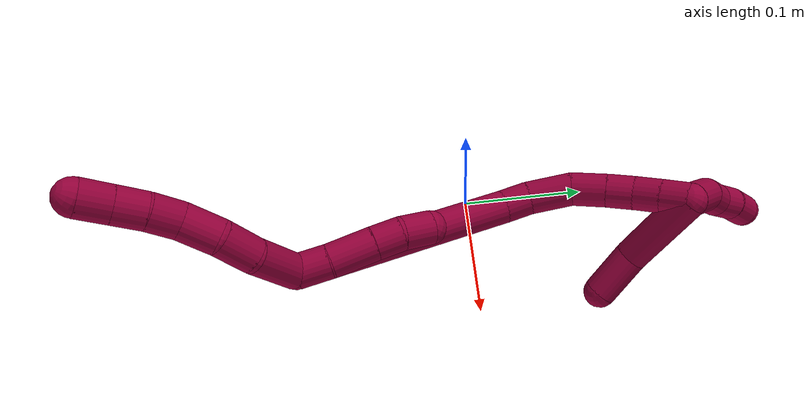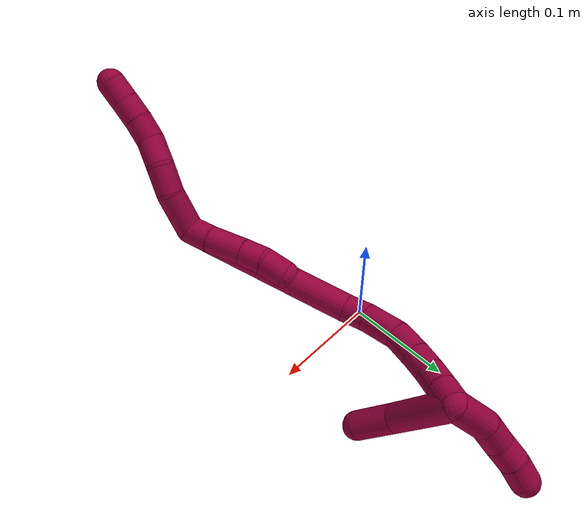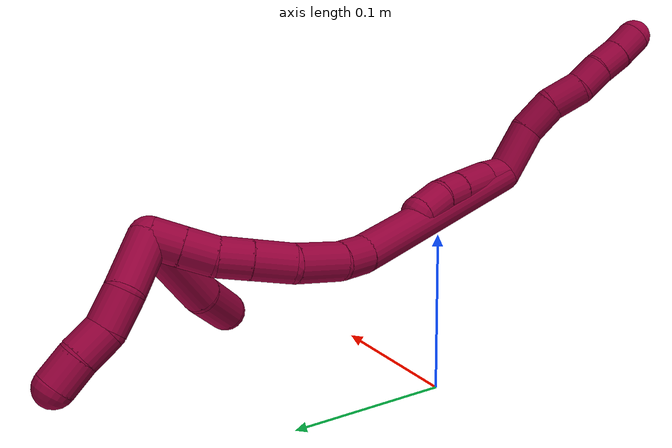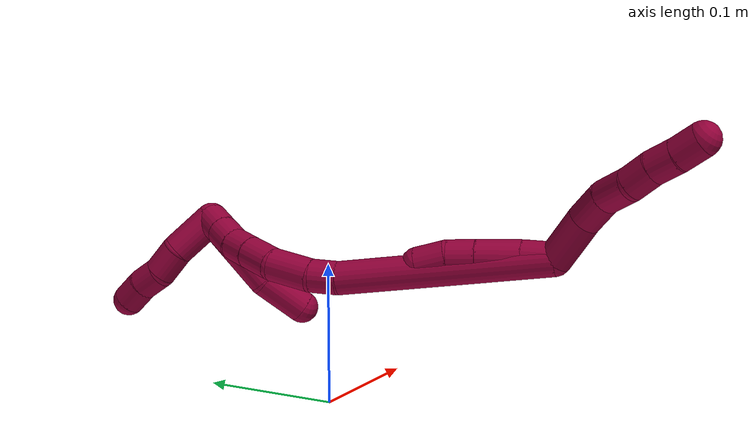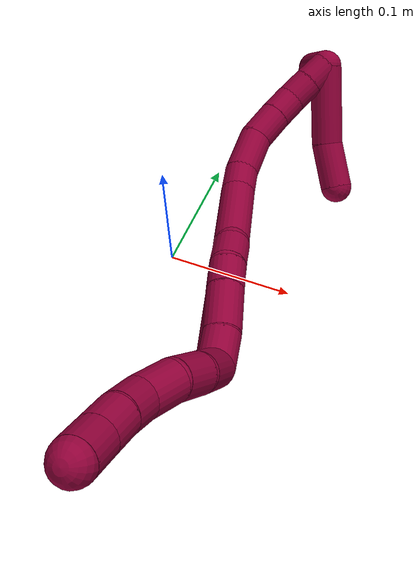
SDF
<sdf version="1.7">
 <world name="default">
  <model name="photoneo_s_sensor">
   <static>1</static>
   <pose>0 0 2 1.57079 1.57079 3.14159</pose>
   <link name="link">
    <inertial><mass>0.1</mass></inertial>
    <sensor name="sensor" type="depth">
     <update_rate>30</update_rate>
     <camera>
      <horizontal_fov>1.22</horizontal_fov>
      <image><width>1920</width><height>1200</height><format>B8G8R8</format></image>
      <clip><near>0.1</near><far>4</far></clip>
      <depth_camera><output>points</output></depth_camera>
     </camera>
     <plugin name="camera_plugin" filename="libgazebo_ros_depth_camera.so">
      <baseline>0.2</baseline>
      <alwaysOn>1</alwaysOn>
      <updateRate>0.0</updateRate>
      <cameraName>camera_ir</cameraName>
      <imageTopicName>/camera/color/image_raw</imageTopicName>
      <cameraInfoTopicName>/camera/color/camera_info</cameraInfoTopicName>
      <depthImageTopicName>/camera/depth/image_raw</depthImageTopicName>
      <depthImageCameraInfoTopicName>/camera/depth/camera_info</depthImageCameraInfoTopicName>
      <pointCloudTopicName>/camera/depth/points</pointCloudTopicName>
      <frameName>fr_optical</frameName>
      <pointCloudCutoff>0.1</pointCloudCutoff>
      <pointCloudCutoffMax>2.0</pointCloudCutoffMax>
      <distortionK1>0</distortionK1>
      <distortionK2>0</distortionK2>
      <distortionK3>0</distortionK3>
      <distortionT1>0</distortionT1>
      <distortionT2>0</distortionT2>
      <CxPrime>0</CxPrime>
      <Cx>0</Cx>
      <Cy>0</Cy>
      <focalLength>0</focalLength>
      <hackBaseline>0</hackBaseline>
     </plugin>
    </sensor>
   </link>
  </model>
  <model name="bin">
   <static>1</static>
   <link name="bottom">
    <collision name="collision-bottom">
     <pose>0 0 -0.01 0 -0 0</pose>
     <geometry><box><size>0.8 0.6 0.02</size></box></geometry>
     <surface>
      <friction><ode><mu>100</mu><mu2>100</mu2></ode></friction>
      <contact><collide_bitmask>65535</collide_bitmask></contact>
     </surface>
    </collision>
   </link>
   <link name="west_wall">
    <collision name="collision-west_wall">
     <pose>-0.41 0 0.1 0 -0 0</pose>
     <geometry><box><size>0.02 0.6 0.2</size></box></geometry>
     <surface>
      <friction><ode><mu>100</mu><mu2>100</mu2></ode></friction>
      <contact><collide_bitmask>65535</collide_bitmask></contact>
     </surface>
    </collision>
   </link>
   <link name="east_wall">
    <collision name="collision-east_wall">
     <pose>0.41 0 0.1 0 -0 0</pose>
     <geometry><box><size>0.02 0.6 0.2</size></box></geometry>
     <surface>
      <friction><ode><mu>100</mu><mu2>100</mu2></ode></friction>
      <contact><collide_bitmask>65535</collide_bitmask></contact>
     </surface>
    </collision>
   </link>
   <link name="south_wall">
    <collision name="collision-south_wall">
     <pose>0 -0.31 0.1 0 -0 0</pose>
     <geometry><box><size>0.8 0.02 0.2</size></box></geometry>
     <surface>
      <friction><ode><mu>100</mu><mu2>100</mu2></ode></friction>
      <contact><collide_bitmask>65535</collide_bitmask></contact>
     </surface>
    </collision>
   </link>
   <link name="north_wall">
    <collision name="collision-north_wall">
     <pose>0 0.31 0.1 0 -0 0</pose>
     <geometry><box><size>0.8 0.02 0.2</size></box></geometry>
     <surface>
      <friction><ode><mu>100</mu><mu2>100</mu2></ode></friction>
      <contact><collide_bitmask>65535</collide_bitmask></contact>
     </surface>
    </collision>
   </link>
  </model>
  <model name="8">
   <static>0</static>
   <link name="8">
    <collision name="collision-cylinder-e_1_2_8">
     <pose>-0.000307 0.001128 0.018685 -0.060277 -0.016421 0.000495</pose>
     <geometry><cylinder><radius>0.0125</radius><length>0.037444</length></cylinder></geometry>
     <surface>
      <friction><ode><mu>1.16</mu><mu2>1.16</mu2><slip1>0</slip1><slip2>0</slip2></ode></friction>
      <contact><ode><kp>1e+06</kp><kd>1</kd><max_vel>0</max_vel><min_depth>0.001</min_depth></ode></contact>
     </surface>
    </collision>
    <visual name="visual-cylinder-e_1_2_8">
     <pose>-0.000307 0.001128 0.018685 -0.060277 -0.016421 0.000495</pose>
     <geometry><cylinder><radius>0.0125</radius><length>0.037444</length></cylinder></geometry>
     <material><ambient>0.584314 0 0.227451 1</ambient></material>
    </visual>
    <collision name="collision-cylinder-e_2_8_9">
     <pose>-0.003065 0.000481 0.049963 0.139961 -0.190377 -0.013385</pose>
     <geometry><cylinder><radius>0.0125</radius><length>0.0259</length></cylinder></geometry>
     <surface>
      <friction><ode><mu>1.16</mu><mu2>1.16</mu2><slip1>0</slip1><slip2>0</slip2></ode></friction>
      <contact><ode><kp>1e+06</kp><kd>1</kd><max_vel>0</max_vel><min_depth>0.001</min_depth></ode></contact>
     </surface>
    </collision>
    <visual name="visual-cylinder-e_2_8_9">
     <pose>-0.003065 0.000481 0.049963 0.139961 -0.190377 -0.013385</pose>
     <geometry><cylinder><radius>0.0125</radius><length>0.0259</length></cylinder></geometry>
     <material><ambient>0.584314 0 0.227451 1</ambient></material>
    </visual>
    <collision name="collision-cylinder-e_3_9_10">
     <pose>-0.007919 -0.006723 0.07381 0.449528 -0.189996 -0.043563</pose>
     <geometry><cylinder><radius>0.0125</radius><length>0.025452</length></cylinder></geometry>
     <surface>
      <friction><ode><mu>1.16</mu><mu2>1.16</mu2><slip1>0</slip1><slip2>0</slip2></ode></friction>
      <contact><ode><kp>1e+06</kp><kd>1</kd><max_vel>0</max_vel><min_depth>0.001</min_depth></ode></contact>
     </surface>
    </collision>
    <visual name="visual-cylinder-e_3_9_10">
     <pose>-0.007919 -0.006723 0.07381 0.449528 -0.189996 -0.043563</pose>
     <geometry><cylinder><radius>0.0125</radius><length>0.025452</length></cylinder></geometry>
     <material><ambient>0.584314 0 0.227451 1</ambient></material>
    </visual>
    <collision name="collision-cylinder-e_4_10_11">
     <pose>-0.010296 -0.014618 0.095023 0.242629 0.002567 0.000313</pose>
     <geometry><cylinder><radius>0.0125</radius><length>0.020516</length></cylinder></geometry>
     <surface>
      <friction><ode><mu>1.16</mu><mu2>1.16</mu2><slip1>0</slip1><slip2>0</slip2></ode></friction>
      <contact><ode><kp>1e+06</kp><kd>1</kd><max_vel>0</max_vel><min_depth>0.001</min_depth></ode></contact>
     </surface>
    </collision>
    <visual name="visual-cylinder-e_4_10_11">
     <pose>-0.010296 -0.014618 0.095023 0.242629 0.002567 0.000313</pose>
     <geometry><cylinder><radius>0.0125</radius><length>0.020516</length></cylinder></geometry>
     <material><ambient>0.584314 0 0.227451 1</ambient></material>
    </visual>
    <collision name="collision-cylinder-e_5_11_12">
     <pose>-0.009624 -0.020672 0.114295 0.36783 0.064654 0.012031</pose>
     <geometry><cylinder><radius>0.0125</radius><length>0.020007</length></cylinder></geometry>
     <surface>
      <friction><ode><mu>1.16</mu><mu2>1.16</mu2><slip1>0</slip1><slip2>0</slip2></ode></friction>
      <contact><ode><kp>1e+06</kp><kd>1</kd><max_vel>0</max_vel><min_depth>0.001</min_depth></ode></contact>
     </surface>
    </collision>
    <visual name="visual-cylinder-e_5_11_12">
     <pose>-0.009624 -0.020672 0.114295 0.36783 0.064654 0.012031</pose>
     <geometry><cylinder><radius>0.0125</radius><length>0.020007</length></cylinder></geometry>
     <material><ambient>0.584314 0 0.227451 1</ambient></material>
    </visual>
    <collision name="collision-cylinder-e_6_12_6">
     <pose>-0.00805 -0.026984 0.133543 0.267448 0.089799 0.012088</pose>
     <geometry><cylinder><radius>0.0125</radius><length>0.020681</length></cylinder></geometry>
     <surface>
      <friction><ode><mu>1.16</mu><mu2>1.16</mu2><slip1>0</slip1><slip2>0</slip2></ode></friction>
      <contact><ode><kp>1e+06</kp><kd>1</kd><max_vel>0</max_vel><min_depth>0.001</min_depth></ode></contact>
     </surface>
    </collision>
    <visual name="visual-cylinder-e_6_12_6">
     <pose>-0.00805 -0.026984 0.133543 0.267448 0.089799 0.012088</pose>
     <geometry><cylinder><radius>0.0125</radius><length>0.020681</length></cylinder></geometry>
     <material><ambient>0.584314 0 0.227451 1</ambient></material>
    </visual>
    <collision name="collision-cylinder-e_1_2_13">
     <pose>-0.005301 0.007933 -0.007093 -2.30034 -0.462132 0.968375</pose>
     <geometry><cylinder><radius>0.0125</radius><length>0.023778</length></cylinder></geometry>
     <surface>
      <friction><ode><mu>1.16</mu><mu2>1.16</mu2><slip1>0</slip1><slip2>0</slip2></ode></friction>
      <contact><ode><kp>1e+06</kp><kd>1</kd><max_vel>0</max_vel><min_depth>0.001</min_depth></ode></contact>
     </surface>
    </collision>
    <visual name="visual-cylinder-e_1_2_13">
     <pose>-0.005301 0.007933 -0.007093 -2.30034 -0.462132 0.968375</pose>
     <geometry><cylinder><radius>0.0125</radius><length>0.023778</length></cylinder></geometry>
     <material><ambient>0.584314 0 0.227451 1</ambient></material>
    </visual>
    <collision name="collision-cylinder-e_2_13_14">
     <pose>-0.019336 0.025531 -0.024304 -2.37907 -0.558074 1.24107</pose>
     <geometry><cylinder><radius>0.0125</radius><length>0.032988</length></cylinder></geometry>
     <surface>
      <friction><ode><mu>1.16</mu><mu2>1.16</mu2><slip1>0</slip1><slip2>0</slip2></ode></friction>
      <contact><ode><kp>1e+06</kp><kd>1</kd><max_vel>0</max_vel><min_depth>0.001</min_depth></ode></contact>
     </surface>
    </collision>
    <visual name="visual-cylinder-e_2_13_14">
     <pose>-0.019336 0.025531 -0.024304 -2.37907 -0.558074 1.24107</pose>
     <geometry><cylinder><radius>0.0125</radius><length>0.032988</length></cylinder></geometry>
     <material><ambient>0.584314 0 0.227451 1</ambient></material>
    </visual>
    <collision name="collision-cylinder-e_3_14_15">
     <pose>-0.033306 0.04112 -0.041017 -2.40978 -0.533409 1.23886</pose>
     <geometry><cylinder><radius>0.0125</radius><length>0.020593</length></cylinder></geometry>
     <surface>
      <friction><ode><mu>1.16</mu><mu2>1.16</mu2><slip1>0</slip1><slip2>0</slip2></ode></friction>
      <contact><ode><kp>1e+06</kp><kd>1</kd><max_vel>0</max_vel><min_depth>0.001</min_depth></ode></contact>
     </surface>
    </collision>
    <visual name="visual-cylinder-e_3_14_15">
     <pose>-0.033306 0.04112 -0.041017 -2.40978 -0.533409 1.23886</pose>
     <geometry><cylinder><radius>0.0125</radius><length>0.020593</length></cylinder></geometry>
     <material><ambient>0.584314 0 0.227451 1</ambient></material>
    </visual>
    <collision name="collision-cylinder-e_4_15_5">
     <pose>-0.043232 0.051988 -0.056653 -2.64122 -0.427198 1.40761</pose>
     <geometry><cylinder><radius>0.0125</radius><length>0.02264</length></cylinder></geometry>
     <surface>
      <friction><ode><mu>1.16</mu><mu2>1.16</mu2><slip1>0</slip1><slip2>0</slip2></ode></friction>
      <contact><ode><kp>1e+06</kp><kd>1</kd><max_vel>0</max_vel><min_depth>0.001</min_depth></ode></contact>
     </surface>
    </collision>
    <visual name="visual-cylinder-e_4_15_5">
     <pose>-0.043232 0.051988 -0.056653 -2.64122 -0.427198 1.40761</pose>
     <geometry><cylinder><radius>0.0125</radius><length>0.02264</length></cylinder></geometry>
     <material><ambient>0.584314 0 0.227451 1</ambient></material>
    </visual>
    <collision name="collision-cylinder-e_1_2_16">
     <pose>-0.038137 0.042574 -0.055601 -2.48812 -0.498679 1.28879</pose>
     <geometry><cylinder><radius>0.0125</radius><length>0.159479</length></cylinder></geometry>
     <surface>
      <friction><ode><mu>1.16</mu><mu2>1.16</mu2><slip1>0</slip1><slip2>0</slip2></ode></friction>
      <contact><ode><kp>1e+06</kp><kd>1</kd><max_vel>0</max_vel><min_depth>0.001</min_depth></ode></contact>
     </surface>
    </collision>
    <visual name="visual-cylinder-e_1_2_16">
     <pose>-0.038137 0.042574 -0.055601 -2.48812 -0.498679 1.28879</pose>
     <geometry><cylinder><radius>0.0125</radius><length>0.159479</length></cylinder></geometry>
     <material><ambient>0.584314 0 0.227451 1</ambient></material>
    </visual>
    <collision name="collision-cylinder-e_2_16_17">
     <pose>-0.081091 0.091968 -0.117184 -2.29083 -0.488159 1.00525</pose>
     <geometry><cylinder><radius>0.0125</radius><length>0.020543</length></cylinder></geometry>
     <surface>
      <friction><ode><mu>1.16</mu><mu2>1.16</mu2><slip1>0</slip1><slip2>0</slip2></ode></friction>
      <contact><ode><kp>1e+06</kp><kd>1</kd><max_vel>0</max_vel><min_depth>0.001</min_depth></ode></contact>
     </surface>
    </collision>
    <visual name="visual-cylinder-e_2_16_17">
     <pose>-0.081091 0.091968 -0.117184 -2.29083 -0.488159 1.00525</pose>
     <geometry><cylinder><radius>0.0125</radius><length>0.020543</length></cylinder></geometry>
     <material><ambient>0.584314 0 0.227451 1</ambient></material>
    </visual>
    <collision name="collision-cylinder-e_3_17_18">
     <pose>-0.090854 0.112234 -0.131416 -2.12115 -0.3038 0.533993</pose>
     <geometry><cylinder><radius>0.0125</radius><length>0.033064</length></cylinder></geometry>
     <surface>
      <friction><ode><mu>1.16</mu><mu2>1.16</mu2><slip1>0</slip1><slip2>0</slip2></ode></friction>
      <contact><ode><kp>1e+06</kp><kd>1</kd><max_vel>0</max_vel><min_depth>0.001</min_depth></ode></contact>
     </surface>
    </collision>
    <visual name="visual-cylinder-e_3_17_18">
     <pose>-0.090854 0.112234 -0.131416 -2.12115 -0.3038 0.533993</pose>
     <geometry><cylinder><radius>0.0125</radius><length>0.033064</length></cylinder></geometry>
     <material><ambient>0.584314 0 0.227451 1</ambient></material>
    </visual>
    <collision name="collision-cylinder-e_4_18_19">
     <pose>-0.095733 0.137309 -0.145432 -2.03108 0.005112 -0.00824</pose>
     <geometry><cylinder><radius>0.0125</radius><length>0.025961</length></cylinder></geometry>
     <surface>
      <friction><ode><mu>1.16</mu><mu2>1.16</mu2><slip1>0</slip1><slip2>0</slip2></ode></friction>
      <contact><ode><kp>1e+06</kp><kd>1</kd><max_vel>0</max_vel><min_depth>0.001</min_depth></ode></contact>
     </surface>
    </collision>
    <visual name="visual-cylinder-e_4_18_19">
     <pose>-0.095733 0.137309 -0.145432 -2.03108 0.005112 -0.00824</pose>
     <geometry><cylinder><radius>0.0125</radius><length>0.025961</length></cylinder></geometry>
     <material><ambient>0.584314 0 0.227451 1</ambient></material>
    </visual>
    <collision name="collision-cylinder-e_5_19_20">
     <pose>-0.095179 0.158056 -0.155782 -2.03664 0.04772 -0.077379</pose>
     <geometry><cylinder><radius>0.0125</radius><length>0.020433</length></cylinder></geometry>
     <surface>
      <friction><ode><mu>1.16</mu><mu2>1.16</mu2><slip1>0</slip1><slip2>0</slip2></ode></friction>
      <contact><ode><kp>1e+06</kp><kd>1</kd><max_vel>0</max_vel><min_depth>0.001</min_depth></ode></contact>
     </surface>
    </collision>
    <visual name="visual-cylinder-e_5_19_20">
     <pose>-0.095179 0.158056 -0.155782 -2.03664 0.04772 -0.077379</pose>
     <geometry><cylinder><radius>0.0125</radius><length>0.020433</length></cylinder></geometry>
     <material><ambient>0.584314 0 0.227451 1</ambient></material>
    </visual>
    <collision name="collision-cylinder-e_6_20_21">
     <pose>-0.093224 0.176872 -0.16314 -1.84943 0.144485 -0.191362</pose>
     <geometry><cylinder><radius>0.0125</radius><length>0.020387</length></cylinder></geometry>
     <surface>
      <friction><ode><mu>1.16</mu><mu2>1.16</mu2><slip1>0</slip1><slip2>0</slip2></ode></friction>
      <contact><ode><kp>1e+06</kp><kd>1</kd><max_vel>0</max_vel><min_depth>0.001</min_depth></ode></contact>
     </surface>
    </collision>
    <visual name="visual-cylinder-e_6_20_21">
     <pose>-0.093224 0.176872 -0.16314 -1.84943 0.144485 -0.191362</pose>
     <geometry><cylinder><radius>0.0125</radius><length>0.020387</length></cylinder></geometry>
     <material><ambient>0.584314 0 0.227451 1</ambient></material>
    </visual>
    <collision name="collision-cylinder-e_7_21_1">
     <pose>-0.09012 0.196145 -0.168553 -1.8397 0.163272 -0.214009</pose>
     <geometry><cylinder><radius>0.0125</radius><length>0.020132</length></cylinder></geometry>
     <surface>
      <friction><ode><mu>1.16</mu><mu2>1.16</mu2><slip1>0</slip1><slip2>0</slip2></ode></friction>
      <contact><ode><kp>1e+06</kp><kd>1</kd><max_vel>0</max_vel><min_depth>0.001</min_depth></ode></contact>
     </surface>
    </collision>
    <visual name="visual-cylinder-e_7_21_1">
     <pose>-0.09012 0.196145 -0.168553 -1.8397 0.163272 -0.214009</pose>
     <geometry><cylinder><radius>0.0125</radius><length>0.020132</length></cylinder></geometry>
     <material><ambient>0.584314 0 0.227451 1</ambient></material>
    </visual>
    <collision name="collision-cylinder-e_1_1_22">
     <pose>-0.071588 0.179862 -0.178358 1.84113 0.561968 0.725385</pose>
     <geometry><cylinder><radius>0.0125</radius><length>0.063418</length></cylinder></geometry>
     <surface>
      <friction><ode><mu>1.16</mu><mu2>1.16</mu2><slip1>0</slip1><slip2>0</slip2></ode></friction>
      <contact><ode><kp>1e+06</kp><kd>1</kd><max_vel>0</max_vel><min_depth>0.001</min_depth></ode></contact>
     </surface>
    </collision>
    <visual name="visual-cylinder-e_1_1_22">
     <pose>-0.071588 0.179862 -0.178358 1.84113 0.561968 0.725385</pose>
     <geometry><cylinder><radius>0.0125</radius><length>0.063418</length></cylinder></geometry>
     <material><ambient>0.584314 0 0.227451 1</ambient></material>
    </visual>
    <collision name="collision-cylinder-e_2_22_4">
     <pose>-0.041721 0.141168 -0.186761 1.66689 0.788292 0.858852</pose>
     <geometry><cylinder><radius>0.0125</radius><length>0.036582</length></cylinder></geometry>
     <surface>
      <friction><ode><mu>1.16</mu><mu2>1.16</mu2><slip1>0</slip1><slip2>0</slip2></ode></friction>
      <contact><ode><kp>1e+06</kp><kd>1</kd><max_vel>0</max_vel><min_depth>0.001</min_depth></ode></contact>
     </surface>
    </collision>
    <visual name="visual-cylinder-e_2_22_4">
     <pose>-0.041721 0.141168 -0.186761 1.66689 0.788292 0.858852</pose>
     <geometry><cylinder><radius>0.0125</radius><length>0.036582</length></cylinder></geometry>
     <material><ambient>0.584314 0 0.227451 1</ambient></material>
    </visual>
    <collision name="collision-cylinder-e_1_1_23">
     <pose>-0.096599 0.204148 -0.187455 3.04524 -0.460942 -2.73627</pose>
     <geometry><cylinder><radius>0.0125</radius><length>0.036486</length></cylinder></geometry>
     <surface>
      <friction><ode><mu>1.16</mu><mu2>1.16</mu2><slip1>0</slip1><slip2>0</slip2></ode></friction>
      <contact><ode><kp>1e+06</kp><kd>1</kd><max_vel>0</max_vel><min_depth>0.001</min_depth></ode></contact>
     </surface>
    </collision>
    <visual name="visual-cylinder-e_1_1_23">
     <pose>-0.096599 0.204148 -0.187455 3.04524 -0.460942 -2.73627</pose>
     <geometry><cylinder><radius>0.0125</radius><length>0.036486</length></cylinder></geometry>
     <material><ambient>0.584314 0 0.227451 1</ambient></material>
    </visual>
    <collision name="collision-cylinder-e_2_23_24">
     <pose>-0.106868 0.201546 -0.215192 3.05206 -0.18492 -2.24148</pose>
     <geometry><cylinder><radius>0.0125</radius><length>0.023438</length></cylinder></geometry>
     <surface>
      <friction><ode><mu>1.16</mu><mu2>1.16</mu2><slip1>0</slip1><slip2>0</slip2></ode></friction>
      <contact><ode><kp>1e+06</kp><kd>1</kd><max_vel>0</max_vel><min_depth>0.001</min_depth></ode></contact>
     </surface>
    </collision>
    <visual name="visual-cylinder-e_2_23_24">
     <pose>-0.106868 0.201546 -0.215192 3.05206 -0.18492 -2.24148</pose>
     <geometry><cylinder><radius>0.0125</radius><length>0.023438</length></cylinder></geometry>
     <material><ambient>0.584314 0 0.227451 1</ambient></material>
    </visual>
    <collision name="collision-cylinder-e_3_24_25">
     <pose>-0.110522 0.202915 -0.236265 -2.89674 -0.150355 1.09859</pose>
     <geometry><cylinder><radius>0.0125</radius><length>0.020017</length></cylinder></geometry>
     <surface>
      <friction><ode><mu>1.16</mu><mu2>1.16</mu2><slip1>0</slip1><slip2>0</slip2></ode></friction>
      <contact><ode><kp>1e+06</kp><kd>1</kd><max_vel>0</max_vel><min_depth>0.001</min_depth></ode></contact>
     </surface>
    </collision>
    <visual name="visual-cylinder-e_3_24_25">
     <pose>-0.110522 0.202915 -0.236265 -2.89674 -0.150355 1.09859</pose>
     <geometry><cylinder><radius>0.0125</radius><length>0.020017</length></cylinder></geometry>
     <material><ambient>0.584314 0 0.227451 1</ambient></material>
    </visual>
    <collision name="collision-cylinder-e_4_25_3">
     <pose>-0.112463 0.206418 -0.255824 -3.03117 -0.044105 0.759436</pose>
     <geometry><cylinder><radius>0.0125</radius><length>0.020059</length></cylinder></geometry>
     <surface>
      <friction><ode><mu>1.16</mu><mu2>1.16</mu2><slip1>0</slip1><slip2>0</slip2></ode></friction>
      <contact><ode><kp>1e+06</kp><kd>1</kd><max_vel>0</max_vel><min_depth>0.001</min_depth></ode></contact>
     </surface>
    </collision>
    <visual name="visual-cylinder-e_4_25_3">
     <pose>-0.112463 0.206418 -0.255824 -3.03117 -0.044105 0.759436</pose>
     <geometry><cylinder><radius>0.0125</radius><length>0.020059</length></cylinder></geometry>
     <material><ambient>0.584314 0 0.227451 1</ambient></material>
    </visual>
    <collision name="collision-sphere-3">
     <pose>-0.112905 0.207523 -0.265783 0 -0 0</pose>
     <geometry><sphere><radius>0.0125</radius></sphere></geometry>
     <surface>
      <friction><ode><mu>1.16</mu><mu2>1.16</mu2><slip1>0</slip1><slip2>0</slip2></ode></friction>
      <contact><ode><kp>1e+06</kp><kd>1</kd><max_vel>0</max_vel><min_depth>0.001</min_depth></ode></contact>
     </surface>
    </collision>
    <visual name="visual-sphere-3">
     <pose>-0.112905 0.207523 -0.265783 0 -0 0</pose>
     <geometry><sphere><radius>0.0125</radius></sphere></geometry>
     <material><ambient>0.584314 0 0.227451 1</ambient></material>
    </visual>
    <collision name="collision-sphere-25">
     <pose>-0.112021 0.205314 -0.245866 0 -0 0</pose>
     <geometry><sphere><radius>0.0125</radius></sphere></geometry>
     <surface>
      <friction><ode><mu>1.16</mu><mu2>1.16</mu2><slip1>0</slip1><slip2>0</slip2></ode></friction>
      <contact><ode><kp>1e+06</kp><kd>1</kd><max_vel>0</max_vel><min_depth>0.001</min_depth></ode></contact>
     </surface>
    </collision>
    <visual name="visual-sphere-25">
     <pose>-0.112021 0.205314 -0.245866 0 -0 0</pose>
     <geometry><sphere><radius>0.0125</radius></sphere></geometry>
     <material><ambient>0.584314 0 0.227451 1</ambient></material>
    </visual>
    <collision name="collision-sphere-24">
     <pose>-0.109022 0.200516 -0.226665 0 -0 0</pose>
     <geometry><sphere><radius>0.0125</radius></sphere></geometry>
     <surface>
      <friction><ode><mu>1.16</mu><mu2>1.16</mu2><slip1>0</slip1><slip2>0</slip2></ode></friction>
      <contact><ode><kp>1e+06</kp><kd>1</kd><max_vel>0</max_vel><min_depth>0.001</min_depth></ode></contact>
     </surface>
    </collision>
    <visual name="visual-sphere-24">
     <pose>-0.109022 0.200516 -0.226665 0 -0 0</pose>
     <geometry><sphere><radius>0.0125</radius></sphere></geometry>
     <material><ambient>0.584314 0 0.227451 1</ambient></material>
    </visual>
    <collision name="collision-sphere-23">
     <pose>-0.104713 0.202577 -0.203718 0 -0 0</pose>
     <geometry><sphere><radius>0.0125</radius></sphere></geometry>
     <surface>
      <friction><ode><mu>1.16</mu><mu2>1.16</mu2><slip1>0</slip1><slip2>0</slip2></ode></friction>
      <contact><ode><kp>1e+06</kp><kd>1</kd><max_vel>0</max_vel><min_depth>0.001</min_depth></ode></contact>
     </surface>
    </collision>
    <visual name="visual-sphere-23">
     <pose>-0.104713 0.202577 -0.203718 0 -0 0</pose>
     <geometry><sphere><radius>0.0125</radius></sphere></geometry>
     <material><ambient>0.584314 0 0.227451 1</ambient></material>
    </visual>
    <collision name="collision-sphere-4">
     <pose>-0.02875 0.128331 -0.187998 0 -0 0</pose>
     <geometry><sphere><radius>0.0125</radius></sphere></geometry>
     <surface>
      <friction><ode><mu>1.16</mu><mu2>1.16</mu2><slip1>0</slip1><slip2>0</slip2></ode></friction>
      <contact><ode><kp>1e+06</kp><kd>1</kd><max_vel>0</max_vel><min_depth>0.001</min_depth></ode></contact>
     </surface>
    </collision>
    <visual name="visual-sphere-4">
     <pose>-0.02875 0.128331 -0.187998 0 -0 0</pose>
     <geometry><sphere><radius>0.0125</radius></sphere></geometry>
     <material><ambient>0.584314 0 0.227451 1</ambient></material>
    </visual>
    <collision name="collision-sphere-22">
     <pose>-0.054692 0.154004 -0.185524 0 -0 0</pose>
     <geometry><sphere><radius>0.0125</radius></sphere></geometry>
     <surface>
      <friction><ode><mu>1.16</mu><mu2>1.16</mu2><slip1>0</slip1><slip2>0</slip2></ode></friction>
      <contact><ode><kp>1e+06</kp><kd>1</kd><max_vel>0</max_vel><min_depth>0.001</min_depth></ode></contact>
     </surface>
    </collision>
    <visual name="visual-sphere-22">
     <pose>-0.054692 0.154004 -0.185524 0 -0 0</pose>
     <geometry><sphere><radius>0.0125</radius></sphere></geometry>
     <material><ambient>0.584314 0 0.227451 1</ambient></material>
    </visual>
    <collision name="collision-sphere-1">
     <pose>-0.088484 0.20572 -0.171192 0 -0 0</pose>
     <geometry><sphere><radius>0.0125</radius></sphere></geometry>
     <surface>
      <friction><ode><mu>1.16</mu><mu2>1.16</mu2><slip1>0</slip1><slip2>0</slip2></ode></friction>
      <contact><ode><kp>1e+06</kp><kd>1</kd><max_vel>0</max_vel><min_depth>0.001</min_depth></ode></contact>
     </surface>
    </collision>
    <visual name="visual-sphere-1">
     <pose>-0.088484 0.20572 -0.171192 0 -0 0</pose>
     <geometry><sphere><radius>0.0125</radius></sphere></geometry>
     <material><ambient>0.584314 0 0.227451 1</ambient></material>
    </visual>
    <collision name="collision-sphere-21">
     <pose>-0.091757 0.18657 -0.165915 0 -0 0</pose>
     <geometry><sphere><radius>0.0125</radius></sphere></geometry>
     <surface>
      <friction><ode><mu>1.16</mu><mu2>1.16</mu2><slip1>0</slip1><slip2>0</slip2></ode></friction>
      <contact><ode><kp>1e+06</kp><kd>1</kd><max_vel>0</max_vel><min_depth>0.001</min_depth></ode></contact>
     </surface>
    </collision>
    <visual name="visual-sphere-21">
     <pose>-0.091757 0.18657 -0.165915 0 -0 0</pose>
     <geometry><sphere><radius>0.0125</radius></sphere></geometry>
     <material><ambient>0.584314 0 0.227451 1</ambient></material>
    </visual>
    <collision name="collision-sphere-12">
     <pose>-0.008977 -0.024262 0.12361 0 -0 0</pose>
     <geometry><sphere><radius>0.0125</radius></sphere></geometry>
     <surface>
      <friction><ode><mu>1.16</mu><mu2>1.16</mu2><slip1>0</slip1><slip2>0</slip2></ode></friction>
      <contact><ode><kp>1e+06</kp><kd>1</kd><max_vel>0</max_vel><min_depth>0.001</min_depth></ode></contact>
     </surface>
    </collision>
    <visual name="visual-sphere-12">
     <pose>-0.008977 -0.024262 0.12361 0 -0 0</pose>
     <geometry><sphere><radius>0.0125</radius></sphere></geometry>
     <material><ambient>0.584314 0 0.227451 1</ambient></material>
    </visual>
    <collision name="collision-sphere-11">
     <pose>-0.01027 -0.017083 0.10498 0 -0 0</pose>
     <geometry><sphere><radius>0.0125</radius></sphere></geometry>
     <surface>
      <friction><ode><mu>1.16</mu><mu2>1.16</mu2><slip1>0</slip1><slip2>0</slip2></ode></friction>
      <contact><ode><kp>1e+06</kp><kd>1</kd><max_vel>0</max_vel><min_depth>0.001</min_depth></ode></contact>
     </surface>
    </collision>
    <visual name="visual-sphere-11">
     <pose>-0.01027 -0.017083 0.10498 0 -0 0</pose>
     <geometry><sphere><radius>0.0125</radius></sphere></geometry>
     <material><ambient>0.584314 0 0.227451 1</ambient></material>
    </visual>
    <collision name="collision-sphere-10">
     <pose>-0.010323 -0.012154 0.085066 0 -0 0</pose>
     <geometry><sphere><radius>0.0125</radius></sphere></geometry>
     <surface>
      <friction><ode><mu>1.16</mu><mu2>1.16</mu2><slip1>0</slip1><slip2>0</slip2></ode></friction>
      <contact><ode><kp>1e+06</kp><kd>1</kd><max_vel>0</max_vel><min_depth>0.001</min_depth></ode></contact>
     </surface>
    </collision>
    <visual name="visual-sphere-10">
     <pose>-0.010323 -0.012154 0.085066 0 -0 0</pose>
     <geometry><sphere><radius>0.0125</radius></sphere></geometry>
     <material><ambient>0.584314 0 0.227451 1</ambient></material>
    </visual>
    <collision name="collision-sphere-9">
     <pose>-0.005516 -0.001293 0.062554 0 -0 0</pose>
     <geometry><sphere><radius>0.0125</radius></sphere></geometry>
     <surface>
      <friction><ode><mu>1.16</mu><mu2>1.16</mu2><slip1>0</slip1><slip2>0</slip2></ode></friction>
      <contact><ode><kp>1e+06</kp><kd>1</kd><max_vel>0</max_vel><min_depth>0.001</min_depth></ode></contact>
     </surface>
    </collision>
    <visual name="visual-sphere-9">
     <pose>-0.005516 -0.001293 0.062554 0 -0 0</pose>
     <geometry><sphere><radius>0.0125</radius></sphere></geometry>
     <material><ambient>0.584314 0 0.227451 1</ambient></material>
    </visual>
    <collision name="collision-sphere-2">
     <geometry><sphere><radius>0.0125</radius></sphere></geometry>
     <surface>
      <friction><ode><mu>1.16</mu><mu2>1.16</mu2><slip1>0</slip1><slip2>0</slip2></ode></friction>
      <contact><ode><kp>1e+06</kp><kd>1</kd><max_vel>0</max_vel><min_depth>0.001</min_depth></ode></contact>
     </surface>
    </collision>
    <visual name="visual-sphere-2">
     <geometry><sphere><radius>0.0125</radius></sphere></geometry>
     <material><ambient>0.584314 0 0.227451 1</ambient></material>
    </visual>
    <collision name="collision-sphere-19">
     <pose>-0.095667 0.148938 -0.151198 0 -0 0</pose>
     <geometry><sphere><radius>0.0125</radius></sphere></geometry>
     <surface>
      <friction><ode><mu>1.16</mu><mu2>1.16</mu2><slip1>0</slip1><slip2>0</slip2></ode></friction>
      <contact><ode><kp>1e+06</kp><kd>1</kd><max_vel>0</max_vel><min_depth>0.001</min_depth></ode></contact>
     </surface>
    </collision>
    <visual name="visual-sphere-19">
     <pose>-0.095667 0.148938 -0.151198 0 -0 0</pose>
     <geometry><sphere><radius>0.0125</radius></sphere></geometry>
     <material><ambient>0.584314 0 0.227451 1</ambient></material>
    </visual>
    <collision name="collision-sphere-8">
     <pose>-0.000615 0.002255 0.037371 0 -0 0</pose>
     <geometry><sphere><radius>0.0125</radius></sphere></geometry>
     <surface>
      <friction><ode><mu>1.16</mu><mu2>1.16</mu2><slip1>0</slip1><slip2>0</slip2></ode></friction>
      <contact><ode><kp>1e+06</kp><kd>1</kd><max_vel>0</max_vel><min_depth>0.001</min_depth></ode></contact>
     </surface>
    </collision>
    <visual name="visual-sphere-8">
     <pose>-0.000615 0.002255 0.037371 0 -0 0</pose>
     <geometry><sphere><radius>0.0125</radius></sphere></geometry>
     <material><ambient>0.584314 0 0.227451 1</ambient></material>
    </visual>
    <collision name="collision-sphere-6">
     <pose>-0.007123 -0.029705 0.143475 0 -0 0</pose>
     <geometry><sphere><radius>0.0125</radius></sphere></geometry>
     <surface>
      <friction><ode><mu>1.16</mu><mu2>1.16</mu2><slip1>0</slip1><slip2>0</slip2></ode></friction>
      <contact><ode><kp>1e+06</kp><kd>1</kd><max_vel>0</max_vel><min_depth>0.001</min_depth></ode></contact>
     </surface>
    </collision>
    <visual name="visual-sphere-6">
     <pose>-0.007123 -0.029705 0.143475 0 -0 0</pose>
     <geometry><sphere><radius>0.0125</radius></sphere></geometry>
     <material><ambient>0.584314 0 0.227451 1</ambient></material>
    </visual>
    <collision name="collision-sphere-13">
     <pose>-0.010602 0.015867 -0.014187 0 -0 0</pose>
     <geometry><sphere><radius>0.0125</radius></sphere></geometry>
     <surface>
      <friction><ode><mu>1.16</mu><mu2>1.16</mu2><slip1>0</slip1><slip2>0</slip2></ode></friction>
      <contact><ode><kp>1e+06</kp><kd>1</kd><max_vel>0</max_vel><min_depth>0.001</min_depth></ode></contact>
     </surface>
    </collision>
    <visual name="visual-sphere-13">
     <pose>-0.010602 0.015867 -0.014187 0 -0 0</pose>
     <geometry><sphere><radius>0.0125</radius></sphere></geometry>
     <material><ambient>0.584314 0 0.227451 1</ambient></material>
    </visual>
    <collision name="collision-sphere-14">
     <pose>-0.028071 0.035196 -0.034421 0 -0 0</pose>
     <geometry><sphere><radius>0.0125</radius></sphere></geometry>
     <surface>
      <friction><ode><mu>1.16</mu><mu2>1.16</mu2><slip1>0</slip1><slip2>0</slip2></ode></friction>
      <contact><ode><kp>1e+06</kp><kd>1</kd><max_vel>0</max_vel><min_depth>0.001</min_depth></ode></contact>
     </surface>
    </collision>
    <visual name="visual-sphere-14">
     <pose>-0.028071 0.035196 -0.034421 0 -0 0</pose>
     <geometry><sphere><radius>0.0125</radius></sphere></geometry>
     <material><ambient>0.584314 0 0.227451 1</ambient></material>
    </visual>
    <collision name="collision-sphere-15">
     <pose>-0.038542 0.047045 -0.047613 0 -0 0</pose>
     <geometry><sphere><radius>0.0125</radius></sphere></geometry>
     <surface>
      <friction><ode><mu>1.16</mu><mu2>1.16</mu2><slip1>0</slip1><slip2>0</slip2></ode></friction>
      <contact><ode><kp>1e+06</kp><kd>1</kd><max_vel>0</max_vel><min_depth>0.001</min_depth></ode></contact>
     </surface>
    </collision>
    <visual name="visual-sphere-15">
     <pose>-0.038542 0.047045 -0.047613 0 -0 0</pose>
     <geometry><sphere><radius>0.0125</radius></sphere></geometry>
     <material><ambient>0.584314 0 0.227451 1</ambient></material>
    </visual>
    <collision name="collision-sphere-5">
     <pose>-0.047922 0.056931 -0.065693 0 -0 0</pose>
     <geometry><sphere><radius>0.0125</radius></sphere></geometry>
     <surface>
      <friction><ode><mu>1.16</mu><mu2>1.16</mu2><slip1>0</slip1><slip2>0</slip2></ode></friction>
      <contact><ode><kp>1e+06</kp><kd>1</kd><max_vel>0</max_vel><min_depth>0.001</min_depth></ode></contact>
     </surface>
    </collision>
    <visual name="visual-sphere-5">
     <pose>-0.047922 0.056931 -0.065693 0 -0 0</pose>
     <geometry><sphere><radius>0.0125</radius></sphere></geometry>
     <material><ambient>0.584314 0 0.227451 1</ambient></material>
    </visual>
    <collision name="collision-sphere-16">
     <pose>-0.076274 0.085148 -0.111202 0 -0 0</pose>
     <geometry><sphere><radius>0.0125</radius></sphere></geometry>
     <surface>
      <friction><ode><mu>1.16</mu><mu2>1.16</mu2><slip1>0</slip1><slip2>0</slip2></ode></friction>
      <contact><ode><kp>1e+06</kp><kd>1</kd><max_vel>0</max_vel><min_depth>0.001</min_depth></ode></contact>
     </surface>
    </collision>
    <visual name="visual-sphere-16">
     <pose>-0.076274 0.085148 -0.111202 0 -0 0</pose>
     <geometry><sphere><radius>0.0125</radius></sphere></geometry>
     <material><ambient>0.584314 0 0.227451 1</ambient></material>
    </visual>
    <collision name="collision-sphere-17">
     <pose>-0.085908 0.098788 -0.123166 0 -0 0</pose>
     <geometry><sphere><radius>0.0125</radius></sphere></geometry>
     <surface>
      <friction><ode><mu>1.16</mu><mu2>1.16</mu2><slip1>0</slip1><slip2>0</slip2></ode></friction>
      <contact><ode><kp>1e+06</kp><kd>1</kd><max_vel>0</max_vel><min_depth>0.001</min_depth></ode></contact>
     </surface>
    </collision>
    <visual name="visual-sphere-17">
     <pose>-0.085908 0.098788 -0.123166 0 -0 0</pose>
     <geometry><sphere><radius>0.0125</radius></sphere></geometry>
     <material><ambient>0.584314 0 0.227451 1</ambient></material>
    </visual>
    <collision name="collision-sphere-18">
     <pose>-0.095799 0.125679 -0.139666 0 -0 0</pose>
     <geometry><sphere><radius>0.0125</radius></sphere></geometry>
     <surface>
      <friction><ode><mu>1.16</mu><mu2>1.16</mu2><slip1>0</slip1><slip2>0</slip2></ode></friction>
      <contact><ode><kp>1e+06</kp><kd>1</kd><max_vel>0</max_vel><min_depth>0.001</min_depth></ode></contact>
     </surface>
    </collision>
    <visual name="visual-sphere-18">
     <pose>-0.095799 0.125679 -0.139666 0 -0 0</pose>
     <geometry><sphere><radius>0.0125</radius></sphere></geometry>
     <material><ambient>0.584314 0 0.227451 1</ambient></material>
    </visual>
    <collision name="collision-sphere-20">
     <pose>-0.094692 0.167173 -0.160366 0 -0 0</pose>
     <geometry><sphere><radius>0.0125</radius></sphere></geometry>
     <surface>
      <friction><ode><mu>1.16</mu><mu2>1.16</mu2><slip1>0</slip1><slip2>0</slip2></ode></friction>
      <contact><ode><kp>1e+06</kp><kd>1</kd><max_vel>0</max_vel><min_depth>0.001</min_depth></ode></contact>
     </surface>
    </collision>
    <visual name="visual-sphere-20">
     <pose>-0.094692 0.167173 -0.160366 0 -0 0</pose>
     <geometry><sphere><radius>0.0125</radius></sphere></geometry>
     <material><ambient>0.584314 0 0.227451 1</ambient></material>
    </visual>
    <inertial>
     <pose>-0.051669 0.087135 -0.081883 0 -0 0</pose>
     <mass>0.75</mass>
     <inertia>
      <ixx>0.000434</ixx>
      <ixy>0</ixy>
      <ixz>0</ixz>
      <iyy>0.00037</iyy>
      <iyz>0</iyz>
      <izz>-3.2e-05</izz>
     </inertia>
    </inertial>
   </link>
   <pose>0.094934 -0.129511 0.09926 0.656595 0.186143 -0.253194</pose>
  </model>
 </world>
</sdf>
